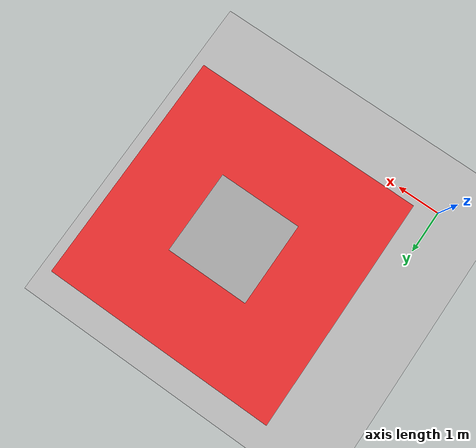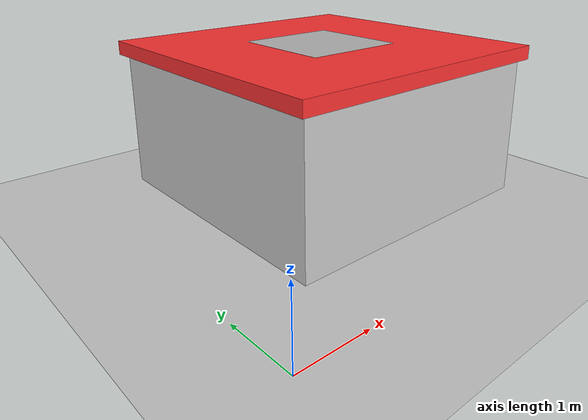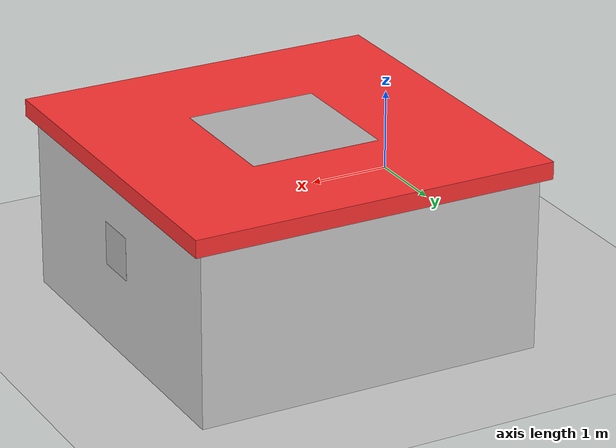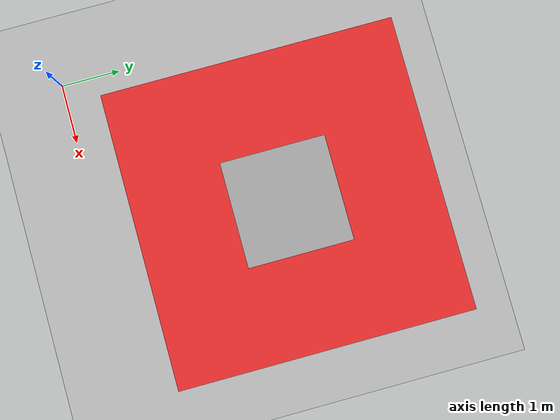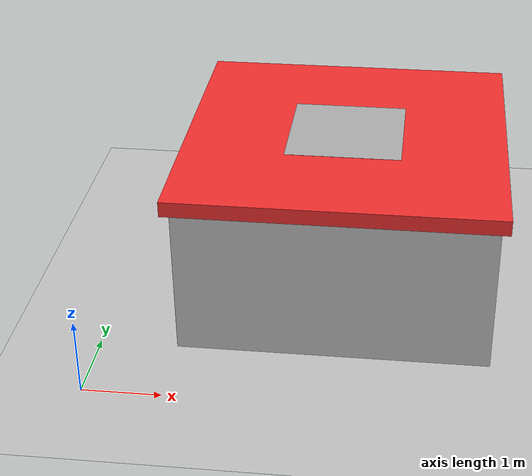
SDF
<sdf version="1.6">
 <world name="default">
  <scene><shadows>0</shadows></scene>
  <physics type="ode">
   <ode>
    <solver><type>quick</type><iters>50</iters><sor>0.8</sor></solver>
    <constraints>
     <cfm>0.0</cfm>
     <erp>0.2</erp>
     <contact_max_correcting_vel>0.1</contact_max_correcting_vel>
     <contact_surface_layer>0.0</contact_surface_layer>
    </constraints>
   </ode>
   <max_step_size>0.004</max_step_size>
   <real_time_update_rate>200</real_time_update_rate>
  </physics>
  <gravity>0 0 -9.8</gravity>
  <model name="ground_plane">
   <static>true</static>
   <link name="link">
    <collision name="collision">
     <geometry><plane><normal>0 0 1</normal><size>5000 5000</size></plane></geometry>
    </collision>
    <visual name="qrcode1">
     <pose>0 0 0.005 0 0 0</pose>
     <geometry><plane><normal>0 0 1</normal><size>0.4 0.4</size></plane></geometry>
    </visual>
   </link>
  </model>
  <include><name>simple_house</name><uri>model://simple_house</uri><pose>3 3 0 0 0 0</pose></include>
 </world>
</sdf>

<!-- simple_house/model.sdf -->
<sdf version="1.6">
  <model name="simple_house">
    <static>true</static>
    <link name="house_link">
      <!-- Main house body -->
      <visual name="house_body">
        <pose>0 0 1 0 0 0</pose>
        <geometry>
          <box>
            <size>4 4 2</size>
          </box>
        </geometry>
        <material>
          <ambient>0.8 0.8 0.8 1</ambient>
          <diffuse>0.8 0.8 0.8 1</diffuse>
        </material>
      </visual>

      <!-- RED ROOF -->
      <visual name="red_roof">
        <pose>0 0 2.1 0 0 0</pose>
        <geometry>
          <box>
            <size>4.2 4.2 0.2</size>
          </box>
        </geometry>
        <material>
          <ambient>1.0 0.2 0.2 1</ambient>
          <diffuse>1.0 0.2 0.2 1</diffuse>
        </material>
      </visual>

      <!-- ROOF ARUCO MARKER -->
      <visual name="aruco_roof">
        <pose>0 0 2.21 0 0 0</pose>
        <geometry>
          <plane>
            <normal>0 0 1</normal>
            <size>1.5 1.5</size>
          </plane>
        </geometry>
        <material>
          <script>
            <uri>file://media/materials/scripts/gazebo2.material</uri>
            <name>Gazebo/Aruco72</name>
          </script>
        </material>
      </visual>

      <!-- WALL ARUCO MARKER - FIXED -->
      <visual name="aruco_wall">
        <!-- Positioned on the front wall (+X direction) -->
        <pose>2.01 0 1.2 0 1.5708 0</pose>
        <geometry>
          <plane>
            <normal>0 0 1</normal>
            <size>0.5 0.5</size>
          </plane>
        </geometry>
        <material>
          <script>
            <uri>file://media/materials/scripts/gazebo.material</uri>
            <name>Gazebo/Aruco72</name>
          </script>
        </material>
      </visual>
    </link>
  </model>
</sdf>
